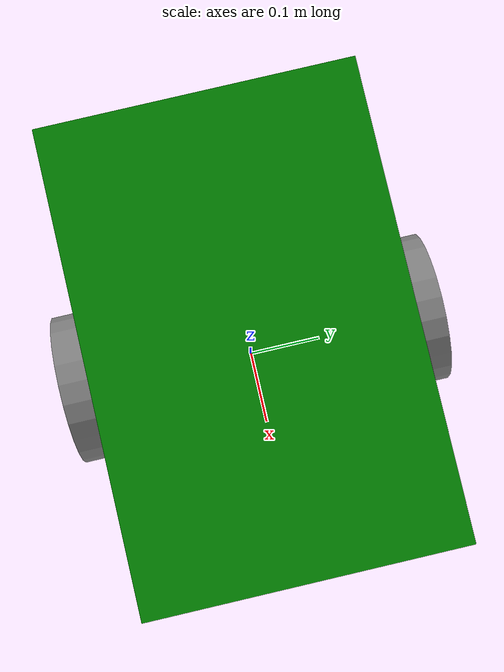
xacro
<?xml version="1.0"?>

<robot name="custom_turtlebot"
       xmlns:xacro="http://www.ros.org/wiki/xacro">

  <!-- PROPIEDADES COMUNES: NO MODIFICAR -->
  <xacro:include filename="$(find custom_turtlebot_description)/urdf/common_properties.xacro"/>

  <!-- DIMENSIONES DE LA BASE -->
  <xacro:property name="base_length" value="0.6"/>
  <xacro:property name="base_width" value="0.4"/>
  <xacro:property name="base_height" value="0.2"/>
  <xacro:property name="base_mass" value="5.0"/>

  <!-- DIMENSIONES DE LAS RUEDAS -->
  <xacro:property name="wheel_radius" value="0.1"/>
  <xacro:property name="wheel_width" value="0.05"/>
  <xacro:property name="wheel_mass" value="1.0"/>

  <!-- CASTER -->
  <xacro:property name="caster_radius" value="0.05"/>
  <xacro:property name="caster_mass" value="0.5"/>

  <!-- ALTURA DE LA BASE -->
  <xacro:property name="base_z"
                  value="${wheel_radius + base_height/2.0}"/>

  <!-- MACRO RUEDAS -->
  <xacro:macro name="wheel_link" params="prefix">

    <link name="${prefix}_wheel_link">

      <xacro:cylinder_inertia
        r="${wheel_radius}"
        l="${wheel_width}"
        m="${wheel_mass}"
        o_xyz="0 0 0"
        o_rpy="1.5707963 0 0"/>

      <visual>
        <origin xyz="0 0 0" rpy="1.5707963 0 0"/>
        <geometry>
          <cylinder radius="${wheel_radius}"
                    length="${wheel_width}"/>
        </geometry>
        <material name="grey"/>
      </visual>

      <collision>
        <origin xyz="0 0 0" rpy="1.5707963 0 0"/>
        <geometry>
          <cylinder radius="${wheel_radius}"
                    length="${wheel_width}"/>
        </geometry>
      </collision>

    </link>

  </xacro:macro>

  <!-- BASE FOOTPRINT -->
  <link name="base_footprint"/>

  <!-- BASE LINK -->
  <link name="base_link">

    <xacro:box_inertia
      l="${base_length}"
      w="${base_width}"
      h="${base_height}"
      m="${base_mass}"
      o_xyz="0 0 0"
      o_rpy="0 0 0"/>

    <visual>
      <origin xyz="0 0 0" rpy="0 0 0"/>
      <geometry>
        <box size="${base_length} ${base_width} ${base_height}"/>
      </geometry>
      <material name="green"/>
    </visual>

    <collision>
      <origin xyz="0 0 0" rpy="0 0 0"/>
      <geometry>
        <box size="${base_length} ${base_width} ${base_height}"/>
      </geometry>
    </collision>

  </link>

  <!-- INSTANCIAS DE RUEDAS -->
  <xacro:wheel_link prefix="left"/>
  <xacro:wheel_link prefix="right"/>

  <!-- CASTER WHEEL -->
  <link name="caster_wheel_link">

    <xacro:sphere_inertia
      r="${caster_radius}"
      m="${caster_mass}"
      o_xyz="0 0 0"
      o_rpy="0 0 0"/>

    <visual>
      <origin xyz="0 0 0" rpy="0 0 0"/>
      <geometry>
        <sphere radius="${caster_radius}"/>
      </geometry>
      <material name="grey"/>
    </visual>

    <collision>
      <origin xyz="0 0 0" rpy="0 0 0"/>
      <geometry>
        <sphere radius="${caster_radius}"/>
      </geometry>
    </collision>

  </link>

  <!-- ARTICULACIONES -->

  <!-- BASE FOOTPRINT A BASE LINK -->
  <joint name="base_joint" type="fixed">
    <parent link="base_footprint"/>
    <child link="base_link"/>
    <origin xyz="0 0 ${base_z}" rpy="0 0 0"/>
  </joint>

  <!-- RUEDA IZQUIERDA -->
  <joint name="base_left_wheel_joint" type="continuous">
    <parent link="base_link"/>
    <child link="left_wheel_link"/>

    <origin xyz="0
                 ${base_width/2 + wheel_width/2}
                 ${-base_height/2}"
            rpy="0 0 0"/>

    <axis xyz="0 1 0"/>
  </joint>

  <!-- RUEDA DERECHA -->
  <joint name="base_right_wheel_joint" type="continuous">
    <parent link="base_link"/>
    <child link="right_wheel_link"/>

    <origin xyz="0
                 ${-base_width/2 - wheel_width/2}
                 ${-base_height/2}"
            rpy="0 0 0"/>

    <axis xyz="0 1 0"/>
  </joint>

  <!-- CASTER -->
  <joint name="base_caster_wheel_joint" type="fixed">
    <parent link="base_link"/>
    <child link="caster_wheel_link"/>

    <origin xyz="${base_length/2 - caster_radius}
                 0
                 ${-base_z + caster_radius}"
            rpy="0 0 0"/>
  </joint>

</robot>

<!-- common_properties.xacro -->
<robot xmlns:xacro="http://www.ros.org/wiki/xacro">
    <material name="green">
        <color rgba="0.0 0.5 0.0 1.0"/>
    </material>

    <material name="grey">
        <color rgba="0.5 0.5 0.5 1.0"/>
    </material>

    <material name="black">
        <color rgba="0.05 0.05 0.05 1.0"/>
    </material>

    <xacro:macro name="box_inertia" params="l w h m o_xyz o_rpy">
        <inertial>
                <origin xyz="${o_xyz}" rpy="${o_rpy}"/>
                <mass value="${m}"/>
                <inertia ixx="${m*(w*w+h*h)/12.0}" ixy="0.0" ixz="0.0"
                         iyy="${m*(l*l+h*h)/12.0}" iyz="0.0"
                         izz="${m*(w*w+l*l)/12.0}"/>
        </inertial>
    </xacro:macro>

    <xacro:macro name="cylinder_inertia" params="r l m o_xyz o_rpy">
        <inertial>
                <origin xyz="${o_xyz}" rpy="${o_rpy}"/>
                <mass value="${m}"/>
                <inertia ixx="${m*(3*r*r+l*l)/12.0}" ixy="0.0" ixz="0.0"
                         iyy="${m*(l*l+3*r*r)/12.0}" iyz="0.0"
                         izz="${m*(r*r)/2.0}"/>
        </inertial>
    </xacro:macro>

    <xacro:macro name="sphere_inertia" params="r m o_xyz o_rpy">
        <inertial>
                <origin xyz="${o_xyz}" rpy="${o_rpy}"/>
                <mass value="${m}"/>
                <inertia ixx="${2*m*r*r/5.0}" ixy="0.0" ixz="0.0"
                         iyy="${2*m*r*r/5.0}" iyz="0.0"
                         izz="${2*m*r*r/5.0}"/>
        </inertial>
    </xacro:macro>

</robot>
